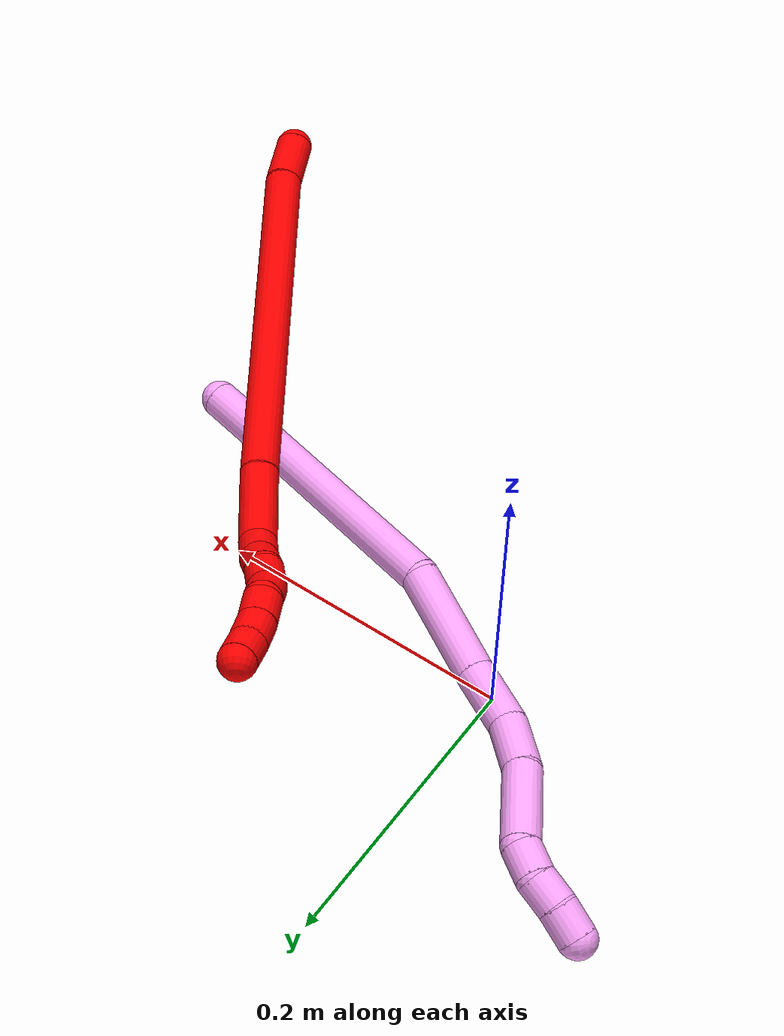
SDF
<sdf version="1.7">
 <world name="default">
  <model name="2">
   <static>0</static>
   <link name="2">
    <collision name="collision-cylinder-e_1_1_4">
     <pose>0.000374 0.00381 -0.019449 -2.94814 0.018851 -0.193676</pose>
     <geometry><cylinder><radius>0.0125</radius><length>0.039644</length></cylinder></geometry>
     <surface>
      <friction><ode><mu>1.16</mu><mu2>1.16</mu2><slip1>0</slip1><slip2>0</slip2></ode></friction>
      <contact><ode><kp>1e+06</kp><kd>1</kd><max_vel>0</max_vel><min_depth>0.001</min_depth></ode></contact>
     </surface>
    </collision>
    <visual name="visual-cylinder-e_1_1_4">
     <pose>0.000374 0.00381 -0.019449 -2.94814 0.018851 -0.193676</pose>
     <geometry><cylinder><radius>0.0125</radius><length>0.039644</length></cylinder></geometry>
     <material><ambient>1 0 0 1</ambient></material>
    </visual>
    <collision name="collision-cylinder-e_2_4_5">
     <pose>-0.003944 0.014572 -0.170513 -3.08882 -0.035578 1.18635</pose>
     <geometry><cylinder><radius>0.0125</radius><length>0.263764</length></cylinder></geometry>
     <surface>
      <friction><ode><mu>1.16</mu><mu2>1.16</mu2><slip1>0</slip1><slip2>0</slip2></ode></friction>
      <contact><ode><kp>1e+06</kp><kd>1</kd><max_vel>0</max_vel><min_depth>0.001</min_depth></ode></contact>
     </surface>
    </collision>
    <visual name="visual-cylinder-e_2_4_5">
     <pose>-0.003944 0.014572 -0.170513 -3.08882 -0.035578 1.18635</pose>
     <geometry><cylinder><radius>0.0125</radius><length>0.263764</length></cylinder></geometry>
     <material><ambient>1 0 0 1</ambient></material>
    </visual>
    <collision name="collision-cylinder-e_3_5_6">
     <pose>-0.008804 0.020269 -0.329121 3.09517 -0.006268 -0.268342</pose>
     <geometry><cylinder><radius>0.0125</radius><length>0.054046</length></cylinder></geometry>
     <surface>
      <friction><ode><mu>1.16</mu><mu2>1.16</mu2><slip1>0</slip1><slip2>0</slip2></ode></friction>
      <contact><ode><kp>1e+06</kp><kd>1</kd><max_vel>0</max_vel><min_depth>0.001</min_depth></ode></contact>
     </surface>
    </collision>
    <visual name="visual-cylinder-e_3_5_6">
     <pose>-0.008804 0.020269 -0.329121 3.09517 -0.006268 -0.268342</pose>
     <geometry><cylinder><radius>0.0125</radius><length>0.054046</length></cylinder></geometry>
     <material><ambient>1 0 0 1</ambient></material>
    </visual>
    <collision name="collision-cylinder-e_4_6_7">
     <pose>-0.013136 0.022044 -0.365566 -2.83149 -0.397108 1.82068</pose>
     <geometry><cylinder><radius>0.0125</radius><length>0.021526</length></cylinder></geometry>
     <surface>
      <friction><ode><mu>1.16</mu><mu2>1.16</mu2><slip1>0</slip1><slip2>0</slip2></ode></friction>
      <contact><ode><kp>1e+06</kp><kd>1</kd><max_vel>0</max_vel><min_depth>0.001</min_depth></ode></contact>
     </surface>
    </collision>
    <visual name="visual-cylinder-e_4_6_7">
     <pose>-0.013136 0.022044 -0.365566 -2.83149 -0.397108 1.82068</pose>
     <geometry><cylinder><radius>0.0125</radius><length>0.021526</length></cylinder></geometry>
     <material><ambient>1 0 0 1</ambient></material>
    </visual>
    <collision name="collision-cylinder-e_5_7_8">
     <pose>-0.022884 0.028282 -0.38281 -2.75081 -0.585287 1.97918</pose>
     <geometry><cylinder><radius>0.0125</radius><length>0.020219</length></cylinder></geometry>
     <surface>
      <friction><ode><mu>1.16</mu><mu2>1.16</mu2><slip1>0</slip1><slip2>0</slip2></ode></friction>
      <contact><ode><kp>1e+06</kp><kd>1</kd><max_vel>0</max_vel><min_depth>0.001</min_depth></ode></contact>
     </surface>
    </collision>
    <visual name="visual-cylinder-e_5_7_8">
     <pose>-0.022884 0.028282 -0.38281 -2.75081 -0.585287 1.97918</pose>
     <geometry><cylinder><radius>0.0125</radius><length>0.020219</length></cylinder></geometry>
     <material><ambient>1 0 0 1</ambient></material>
    </visual>
    <collision name="collision-cylinder-e_6_8_9">
     <pose>-0.032126 0.033305 -0.399921 -2.94943 -0.367724 2.18529</pose>
     <geometry><cylinder><radius>0.0125</radius><length>0.02035</length></cylinder></geometry>
     <surface>
      <friction><ode><mu>1.16</mu><mu2>1.16</mu2><slip1>0</slip1><slip2>0</slip2></ode></friction>
      <contact><ode><kp>1e+06</kp><kd>1</kd><max_vel>0</max_vel><min_depth>0.001</min_depth></ode></contact>
     </surface>
    </collision>
    <visual name="visual-cylinder-e_6_8_9">
     <pose>-0.032126 0.033305 -0.399921 -2.94943 -0.367724 2.18529</pose>
     <geometry><cylinder><radius>0.0125</radius><length>0.02035</length></cylinder></geometry>
     <material><ambient>1 0 0 1</ambient></material>
    </visual>
    <collision name="collision-cylinder-e_7_9_10">
     <pose>-0.039379 0.040178 -0.417232 -2.57715 -0.363283 1.12926</pose>
     <geometry><cylinder><radius>0.0125</radius><length>0.020236</length></cylinder></geometry>
     <surface>
      <friction><ode><mu>1.16</mu><mu2>1.16</mu2><slip1>0</slip1><slip2>0</slip2></ode></friction>
      <contact><ode><kp>1e+06</kp><kd>1</kd><max_vel>0</max_vel><min_depth>0.001</min_depth></ode></contact>
     </surface>
    </collision>
    <visual name="visual-cylinder-e_7_9_10">
     <pose>-0.039379 0.040178 -0.417232 -2.57715 -0.363283 1.12926</pose>
     <geometry><cylinder><radius>0.0125</radius><length>0.020236</length></cylinder></geometry>
     <material><ambient>1 0 0 1</ambient></material>
    </visual>
    <collision name="collision-cylinder-e_8_10_11">
     <pose>-0.043613 0.047729 -0.434968 -2.89125 -0.063378 0.493579</pose>
     <geometry><cylinder><radius>0.0125</radius><length>0.020158</length></cylinder></geometry>
     <surface>
      <friction><ode><mu>1.16</mu><mu2>1.16</mu2><slip1>0</slip1><slip2>0</slip2></ode></friction>
      <contact><ode><kp>1e+06</kp><kd>1</kd><max_vel>0</max_vel><min_depth>0.001</min_depth></ode></contact>
     </surface>
    </collision>
    <visual name="visual-cylinder-e_8_10_11">
     <pose>-0.043613 0.047729 -0.434968 -2.89125 -0.063378 0.493579</pose>
     <geometry><cylinder><radius>0.0125</radius><length>0.020158</length></cylinder></geometry>
     <material><ambient>1 0 0 1</ambient></material>
    </visual>
    <collision name="collision-cylinder-e_9_11_12">
     <pose>-0.044707 0.053989 -0.453978 -2.7554 -0.045497 0.231679</pose>
     <geometry><cylinder><radius>0.0125</radius><length>0.020025</length></cylinder></geometry>
     <surface>
      <friction><ode><mu>1.16</mu><mu2>1.16</mu2><slip1>0</slip1><slip2>0</slip2></ode></friction>
      <contact><ode><kp>1e+06</kp><kd>1</kd><max_vel>0</max_vel><min_depth>0.001</min_depth></ode></contact>
     </surface>
    </collision>
    <visual name="visual-cylinder-e_9_11_12">
     <pose>-0.044707 0.053989 -0.453978 -2.7554 -0.045497 0.231679</pose>
     <geometry><cylinder><radius>0.0125</radius><length>0.020025</length></cylinder></geometry>
     <material><ambient>1 0 0 1</ambient></material>
    </visual>
    <collision name="collision-cylinder-e_10_12_2">
     <pose>-0.04621 0.062521 -0.471992 -2.64279 -0.104752 0.405974</pose>
     <geometry><cylinder><radius>0.0125</radius><length>0.020032</length></cylinder></geometry>
     <surface>
      <friction><ode><mu>1.16</mu><mu2>1.16</mu2><slip1>0</slip1><slip2>0</slip2></ode></friction>
      <contact><ode><kp>1e+06</kp><kd>1</kd><max_vel>0</max_vel><min_depth>0.001</min_depth></ode></contact>
     </surface>
    </collision>
    <visual name="visual-cylinder-e_10_12_2">
     <pose>-0.04621 0.062521 -0.471992 -2.64279 -0.104752 0.405974</pose>
     <geometry><cylinder><radius>0.0125</radius><length>0.020032</length></cylinder></geometry>
     <material><ambient>1 0 0 1</ambient></material>
    </visual>
    <collision name="collision-sphere-2">
     <pose>-0.047257 0.067287 -0.480739 0 -0 0</pose>
     <geometry><sphere><radius>0.0125</radius></sphere></geometry>
     <surface>
      <friction><ode><mu>1.16</mu><mu2>1.16</mu2><slip1>0</slip1><slip2>0</slip2></ode></friction>
      <contact><ode><kp>1e+06</kp><kd>1</kd><max_vel>0</max_vel><min_depth>0.001</min_depth></ode></contact>
     </surface>
    </collision>
    <visual name="visual-sphere-2">
     <pose>-0.047257 0.067287 -0.480739 0 -0 0</pose>
     <geometry><sphere><radius>0.0125</radius></sphere></geometry>
     <material><ambient>1 0 0 1</ambient></material>
    </visual>
    <collision name="collision-sphere-12">
     <pose>-0.045162 0.057756 -0.463244 0 -0 0</pose>
     <geometry><sphere><radius>0.0125</radius></sphere></geometry>
     <surface>
      <friction><ode><mu>1.16</mu><mu2>1.16</mu2><slip1>0</slip1><slip2>0</slip2></ode></friction>
      <contact><ode><kp>1e+06</kp><kd>1</kd><max_vel>0</max_vel><min_depth>0.001</min_depth></ode></contact>
     </surface>
    </collision>
    <visual name="visual-sphere-12">
     <pose>-0.045162 0.057756 -0.463244 0 -0 0</pose>
     <geometry><sphere><radius>0.0125</radius></sphere></geometry>
     <material><ambient>1 0 0 1</ambient></material>
    </visual>
    <collision name="collision-sphere-11">
     <pose>-0.044252 0.050221 -0.444713 0 -0 0</pose>
     <geometry><sphere><radius>0.0125</radius></sphere></geometry>
     <surface>
      <friction><ode><mu>1.16</mu><mu2>1.16</mu2><slip1>0</slip1><slip2>0</slip2></ode></friction>
      <contact><ode><kp>1e+06</kp><kd>1</kd><max_vel>0</max_vel><min_depth>0.001</min_depth></ode></contact>
     </surface>
    </collision>
    <visual name="visual-sphere-11">
     <pose>-0.044252 0.050221 -0.444713 0 -0 0</pose>
     <geometry><sphere><radius>0.0125</radius></sphere></geometry>
     <material><ambient>1 0 0 1</ambient></material>
    </visual>
    <collision name="collision-sphere-10">
     <pose>-0.042975 0.045237 -0.425223 0 -0 0</pose>
     <geometry><sphere><radius>0.0125</radius></sphere></geometry>
     <surface>
      <friction><ode><mu>1.16</mu><mu2>1.16</mu2><slip1>0</slip1><slip2>0</slip2></ode></friction>
      <contact><ode><kp>1e+06</kp><kd>1</kd><max_vel>0</max_vel><min_depth>0.001</min_depth></ode></contact>
     </surface>
    </collision>
    <visual name="visual-sphere-10">
     <pose>-0.042975 0.045237 -0.425223 0 -0 0</pose>
     <geometry><sphere><radius>0.0125</radius></sphere></geometry>
     <material><ambient>1 0 0 1</ambient></material>
    </visual>
    <collision name="collision-sphere-9">
     <pose>-0.035784 0.035119 -0.409241 0 -0 0</pose>
     <geometry><sphere><radius>0.0125</radius></sphere></geometry>
     <surface>
      <friction><ode><mu>1.16</mu><mu2>1.16</mu2><slip1>0</slip1><slip2>0</slip2></ode></friction>
      <contact><ode><kp>1e+06</kp><kd>1</kd><max_vel>0</max_vel><min_depth>0.001</min_depth></ode></contact>
     </surface>
    </collision>
    <visual name="visual-sphere-9">
     <pose>-0.035784 0.035119 -0.409241 0 -0 0</pose>
     <geometry><sphere><radius>0.0125</radius></sphere></geometry>
     <material><ambient>1 0 0 1</ambient></material>
    </visual>
    <collision name="collision-sphere-4">
     <pose>0.000747 0.00762 -0.038898 0 -0 0</pose>
     <geometry><sphere><radius>0.0125</radius></sphere></geometry>
     <surface>
      <friction><ode><mu>1.16</mu><mu2>1.16</mu2><slip1>0</slip1><slip2>0</slip2></ode></friction>
      <contact><ode><kp>1e+06</kp><kd>1</kd><max_vel>0</max_vel><min_depth>0.001</min_depth></ode></contact>
     </surface>
    </collision>
    <visual name="visual-sphere-4">
     <pose>0.000747 0.00762 -0.038898 0 -0 0</pose>
     <geometry><sphere><radius>0.0125</radius></sphere></geometry>
     <material><ambient>1 0 0 1</ambient></material>
    </visual>
    <collision name="collision-sphere-1">
     <geometry><sphere><radius>0.0125</radius></sphere></geometry>
     <surface>
      <friction><ode><mu>1.16</mu><mu2>1.16</mu2><slip1>0</slip1><slip2>0</slip2></ode></friction>
      <contact><ode><kp>1e+06</kp><kd>1</kd><max_vel>0</max_vel><min_depth>0.001</min_depth></ode></contact>
     </surface>
    </collision>
    <visual name="visual-sphere-1">
     <geometry><sphere><radius>0.0125</radius></sphere></geometry>
     <material><ambient>1 0 0 1</ambient></material>
    </visual>
    <collision name="collision-sphere-8">
     <pose>-0.028468 0.031492 -0.390601 0 -0 0</pose>
     <geometry><sphere><radius>0.0125</radius></sphere></geometry>
     <surface>
      <friction><ode><mu>1.16</mu><mu2>1.16</mu2><slip1>0</slip1><slip2>0</slip2></ode></friction>
      <contact><ode><kp>1e+06</kp><kd>1</kd><max_vel>0</max_vel><min_depth>0.001</min_depth></ode></contact>
     </surface>
    </collision>
    <visual name="visual-sphere-8">
     <pose>-0.028468 0.031492 -0.390601 0 -0 0</pose>
     <geometry><sphere><radius>0.0125</radius></sphere></geometry>
     <material><ambient>1 0 0 1</ambient></material>
    </visual>
    <collision name="collision-sphere-5">
     <pose>-0.008635 0.021523 -0.302128 0 -0 0</pose>
     <geometry><sphere><radius>0.0125</radius></sphere></geometry>
     <surface>
      <friction><ode><mu>1.16</mu><mu2>1.16</mu2><slip1>0</slip1><slip2>0</slip2></ode></friction>
      <contact><ode><kp>1e+06</kp><kd>1</kd><max_vel>0</max_vel><min_depth>0.001</min_depth></ode></contact>
     </surface>
    </collision>
    <visual name="visual-sphere-5">
     <pose>-0.008635 0.021523 -0.302128 0 -0 0</pose>
     <geometry><sphere><radius>0.0125</radius></sphere></geometry>
     <material><ambient>1 0 0 1</ambient></material>
    </visual>
    <collision name="collision-sphere-6">
     <pose>-0.008974 0.019015 -0.356114 0 -0 0</pose>
     <geometry><sphere><radius>0.0125</radius></sphere></geometry>
     <surface>
      <friction><ode><mu>1.16</mu><mu2>1.16</mu2><slip1>0</slip1><slip2>0</slip2></ode></friction>
      <contact><ode><kp>1e+06</kp><kd>1</kd><max_vel>0</max_vel><min_depth>0.001</min_depth></ode></contact>
     </surface>
    </collision>
    <visual name="visual-sphere-6">
     <pose>-0.008974 0.019015 -0.356114 0 -0 0</pose>
     <geometry><sphere><radius>0.0125</radius></sphere></geometry>
     <material><ambient>1 0 0 1</ambient></material>
    </visual>
    <collision name="collision-sphere-7">
     <pose>-0.017299 0.025072 -0.375018 0 -0 0</pose>
     <geometry><sphere><radius>0.0125</radius></sphere></geometry>
     <surface>
      <friction><ode><mu>1.16</mu><mu2>1.16</mu2><slip1>0</slip1><slip2>0</slip2></ode></friction>
      <contact><ode><kp>1e+06</kp><kd>1</kd><max_vel>0</max_vel><min_depth>0.001</min_depth></ode></contact>
     </surface>
    </collision>
    <visual name="visual-sphere-7">
     <pose>-0.017299 0.025072 -0.375018 0 -0 0</pose>
     <geometry><sphere><radius>0.0125</radius></sphere></geometry>
     <material><ambient>1 0 0 1</ambient></material>
    </visual>
    <inertial>
     <pose>-0.012795 0.021846 -0.246077 0 -0 0</pose>
     <mass>0.5</mass>
     <inertia>
      <ixx>0.002025</ixx>
      <ixy>0</ixy>
      <ixz>0</ixz>
      <iyy>0.000836</iyy>
      <iyz>0</iyz>
      <izz>-6.5e-05</izz>
     </inertia>
    </inertial>
   </link>
   <pose>0.357165 -0.276734 0.0622 1.49144 0.731303 0.532167</pose>
  </model>
  <model name="4">
   <static>0</static>
   <link name="4">
    <collision name="collision-cylinder-e_1_1_4">
     <pose>-0.015302 -0.004717 0.021945 0.211713 -0.598356 -0.065522</pose>
     <geometry><cylinder><radius>0.0125</radius><length>0.054331</length></cylinder></geometry>
     <surface>
      <friction><ode><mu>1.16</mu><mu2>1.16</mu2><slip1>0</slip1><slip2>0</slip2></ode></friction>
      <contact><ode><kp>1e+06</kp><kd>1</kd><max_vel>0</max_vel><min_depth>0.001</min_depth></ode></contact>
     </surface>
    </collision>
    <visual name="visual-cylinder-e_1_1_4">
     <pose>-0.015302 -0.004717 0.021945 0.211713 -0.598356 -0.065522</pose>
     <geometry><cylinder><radius>0.0125</radius><length>0.054331</length></cylinder></geometry>
     <material><ambient>1 0.65098 0.996078 1</ambient></material>
    </visual>
    <collision name="collision-cylinder-e_2_4_5">
     <pose>-0.07441 -0.008728 0.114559 -0.009982 -0.554884 0.002843</pose>
     <geometry><cylinder><radius>0.0125</radius><length>0.166297</length></cylinder></geometry>
     <surface>
      <friction><ode><mu>1.16</mu><mu2>1.16</mu2><slip1>0</slip1><slip2>0</slip2></ode></friction>
      <contact><ode><kp>1e+06</kp><kd>1</kd><max_vel>0</max_vel><min_depth>0.001</min_depth></ode></contact>
     </surface>
    </collision>
    <visual name="visual-cylinder-e_2_4_5">
     <pose>-0.07441 -0.008728 0.114559 -0.009982 -0.554884 0.002843</pose>
     <geometry><cylinder><radius>0.0125</radius><length>0.166297</length></cylinder></geometry>
     <material><ambient>1 0.65098 0.996078 1</ambient></material>
    </visual>
    <collision name="collision-cylinder-e_3_5_6">
     <pose>-0.14788 -0.010372 0.209128 0.097991 -0.890249 -0.046776</pose>
     <geometry><cylinder><radius>0.0125</radius><length>0.076333</length></cylinder></geometry>
     <surface>
      <friction><ode><mu>1.16</mu><mu2>1.16</mu2><slip1>0</slip1><slip2>0</slip2></ode></friction>
      <contact><ode><kp>1e+06</kp><kd>1</kd><max_vel>0</max_vel><min_depth>0.001</min_depth></ode></contact>
     </surface>
    </collision>
    <visual name="visual-cylinder-e_3_5_6">
     <pose>-0.14788 -0.010372 0.209128 0.097991 -0.890249 -0.046776</pose>
     <geometry><cylinder><radius>0.0125</radius><length>0.076333</length></cylinder></geometry>
     <material><ambient>1 0.65098 0.996078 1</ambient></material>
    </visual>
    <collision name="collision-cylinder-e_4_6_7">
     <pose>-0.192915 -0.013117 0.247496 0.027365 -0.815415 -0.01182</pose>
     <geometry><cylinder><radius>0.0125</radius><length>0.042225</length></cylinder></geometry>
     <surface>
      <friction><ode><mu>1.16</mu><mu2>1.16</mu2><slip1>0</slip1><slip2>0</slip2></ode></friction>
      <contact><ode><kp>1e+06</kp><kd>1</kd><max_vel>0</max_vel><min_depth>0.001</min_depth></ode></contact>
     </surface>
    </collision>
    <visual name="visual-cylinder-e_4_6_7">
     <pose>-0.192915 -0.013117 0.247496 0.027365 -0.815415 -0.01182</pose>
     <geometry><cylinder><radius>0.0125</radius><length>0.042225</length></cylinder></geometry>
     <material><ambient>1 0.65098 0.996078 1</ambient></material>
    </visual>
    <collision name="collision-cylinder-e_5_7_8">
     <pose>-0.221882 -0.006677 0.274125 -0.512188 -0.772592 0.2122</pose>
     <geometry><cylinder><radius>0.0125</radius><length>0.03896</length></cylinder></geometry>
     <surface>
      <friction><ode><mu>1.16</mu><mu2>1.16</mu2><slip1>0</slip1><slip2>0</slip2></ode></friction>
      <contact><ode><kp>1e+06</kp><kd>1</kd><max_vel>0</max_vel><min_depth>0.001</min_depth></ode></contact>
     </surface>
    </collision>
    <visual name="visual-cylinder-e_5_7_8">
     <pose>-0.221882 -0.006677 0.274125 -0.512188 -0.772592 0.2122</pose>
     <geometry><cylinder><radius>0.0125</radius><length>0.03896</length></cylinder></geometry>
     <material><ambient>1 0.65098 0.996078 1</ambient></material>
    </visual>
    <collision name="collision-cylinder-e_6_8_9">
     <pose>-0.257798 0.014025 0.298673 -0.841583 -0.876218 0.413317</pose>
     <geometry><cylinder><radius>0.0125</radius><length>0.0581</length></cylinder></geometry>
     <surface>
      <friction><ode><mu>1.16</mu><mu2>1.16</mu2><slip1>0</slip1><slip2>0</slip2></ode></friction>
      <contact><ode><kp>1e+06</kp><kd>1</kd><max_vel>0</max_vel><min_depth>0.001</min_depth></ode></contact>
     </surface>
    </collision>
    <visual name="visual-cylinder-e_6_8_9">
     <pose>-0.257798 0.014025 0.298673 -0.841583 -0.876218 0.413317</pose>
     <geometry><cylinder><radius>0.0125</radius><length>0.0581</length></cylinder></geometry>
     <material><ambient>1 0.65098 0.996078 1</ambient></material>
    </visual>
    <collision name="collision-cylinder-e_7_9_10">
     <pose>-0.288771 0.027779 0.317272 0.017939 -0.948164 -0.009205</pose>
     <geometry><cylinder><radius>0.0125</radius><length>0.021303</length></cylinder></geometry>
     <surface>
      <friction><ode><mu>1.16</mu><mu2>1.16</mu2><slip1>0</slip1><slip2>0</slip2></ode></friction>
      <contact><ode><kp>1e+06</kp><kd>1</kd><max_vel>0</max_vel><min_depth>0.001</min_depth></ode></contact>
     </surface>
    </collision>
    <visual name="visual-cylinder-e_7_9_10">
     <pose>-0.288771 0.027779 0.317272 0.017939 -0.948164 -0.009205</pose>
     <geometry><cylinder><radius>0.0125</radius><length>0.021303</length></cylinder></geometry>
     <material><ambient>1 0.65098 0.996078 1</ambient></material>
    </visual>
    <collision name="collision-cylinder-e_8_10_11">
     <pose>-0.305006 0.024371 0.329805 0.480628 -0.816166 -0.211109</pose>
     <geometry><cylinder><radius>0.0125</radius><length>0.020815</length></cylinder></geometry>
     <surface>
      <friction><ode><mu>1.16</mu><mu2>1.16</mu2><slip1>0</slip1><slip2>0</slip2></ode></friction>
      <contact><ode><kp>1e+06</kp><kd>1</kd><max_vel>0</max_vel><min_depth>0.001</min_depth></ode></contact>
     </surface>
    </collision>
    <visual name="visual-cylinder-e_8_10_11">
     <pose>-0.305006 0.024371 0.329805 0.480628 -0.816166 -0.211109</pose>
     <geometry><cylinder><radius>0.0125</radius><length>0.020815</length></cylinder></geometry>
     <material><ambient>1 0.65098 0.996078 1</ambient></material>
    </visual>
    <collision name="collision-cylinder-e_9_11_2">
     <pose>-0.32122 0.017122 0.341312 0.651313 -0.923894 -0.333129</pose>
     <geometry><cylinder><radius>0.0125</radius><length>0.021636</length></cylinder></geometry>
     <surface>
      <friction><ode><mu>1.16</mu><mu2>1.16</mu2><slip1>0</slip1><slip2>0</slip2></ode></friction>
      <contact><ode><kp>1e+06</kp><kd>1</kd><max_vel>0</max_vel><min_depth>0.001</min_depth></ode></contact>
     </surface>
    </collision>
    <visual name="visual-cylinder-e_9_11_2">
     <pose>-0.32122 0.017122 0.341312 0.651313 -0.923894 -0.333129</pose>
     <geometry><cylinder><radius>0.0125</radius><length>0.021636</length></cylinder></geometry>
     <material><ambient>1 0.65098 0.996078 1</ambient></material>
    </visual>
    <collision name="collision-sphere-2">
     <pose>-0.329853 0.013169 0.346497 0 -0 0</pose>
     <geometry><sphere><radius>0.0125</radius></sphere></geometry>
     <surface>
      <friction><ode><mu>1.16</mu><mu2>1.16</mu2><slip1>0</slip1><slip2>0</slip2></ode></friction>
      <contact><ode><kp>1e+06</kp><kd>1</kd><max_vel>0</max_vel><min_depth>0.001</min_depth></ode></contact>
     </surface>
    </collision>
    <visual name="visual-sphere-2">
     <pose>-0.329853 0.013169 0.346497 0 -0 0</pose>
     <geometry><sphere><radius>0.0125</radius></sphere></geometry>
     <material><ambient>1 0.65098 0.996078 1</ambient></material>
    </visual>
    <collision name="collision-sphere-11">
     <pose>-0.312588 0.021075 0.336126 0 -0 0</pose>
     <geometry><sphere><radius>0.0125</radius></sphere></geometry>
     <surface>
      <friction><ode><mu>1.16</mu><mu2>1.16</mu2><slip1>0</slip1><slip2>0</slip2></ode></friction>
      <contact><ode><kp>1e+06</kp><kd>1</kd><max_vel>0</max_vel><min_depth>0.001</min_depth></ode></contact>
     </surface>
    </collision>
    <visual name="visual-sphere-11">
     <pose>-0.312588 0.021075 0.336126 0 -0 0</pose>
     <geometry><sphere><radius>0.0125</radius></sphere></geometry>
     <material><ambient>1 0.65098 0.996078 1</ambient></material>
    </visual>
    <collision name="collision-sphere-10">
     <pose>-0.297423 0.027667 0.323483 0 -0 0</pose>
     <geometry><sphere><radius>0.0125</radius></sphere></geometry>
     <surface>
      <friction><ode><mu>1.16</mu><mu2>1.16</mu2><slip1>0</slip1><slip2>0</slip2></ode></friction>
      <contact><ode><kp>1e+06</kp><kd>1</kd><max_vel>0</max_vel><min_depth>0.001</min_depth></ode></contact>
     </surface>
    </collision>
    <visual name="visual-sphere-10">
     <pose>-0.297423 0.027667 0.323483 0 -0 0</pose>
     <geometry><sphere><radius>0.0125</radius></sphere></geometry>
     <material><ambient>1 0.65098 0.996078 1</ambient></material>
    </visual>
    <collision name="collision-sphere-9">
     <pose>-0.280118 0.02789 0.311062 0 -0 0</pose>
     <geometry><sphere><radius>0.0125</radius></sphere></geometry>
     <surface>
      <friction><ode><mu>1.16</mu><mu2>1.16</mu2><slip1>0</slip1><slip2>0</slip2></ode></friction>
      <contact><ode><kp>1e+06</kp><kd>1</kd><max_vel>0</max_vel><min_depth>0.001</min_depth></ode></contact>
     </surface>
    </collision>
    <visual name="visual-sphere-9">
     <pose>-0.280118 0.02789 0.311062 0 -0 0</pose>
     <geometry><sphere><radius>0.0125</radius></sphere></geometry>
     <material><ambient>1 0.65098 0.996078 1</ambient></material>
    </visual>
    <collision name="collision-sphere-4">
     <pose>-0.030604 -0.009433 0.043889 0 -0 0</pose>
     <geometry><sphere><radius>0.0125</radius></sphere></geometry>
     <surface>
      <friction><ode><mu>1.16</mu><mu2>1.16</mu2><slip1>0</slip1><slip2>0</slip2></ode></friction>
      <contact><ode><kp>1e+06</kp><kd>1</kd><max_vel>0</max_vel><min_depth>0.001</min_depth></ode></contact>
     </surface>
    </collision>
    <visual name="visual-sphere-4">
     <pose>-0.030604 -0.009433 0.043889 0 -0 0</pose>
     <geometry><sphere><radius>0.0125</radius></sphere></geometry>
     <material><ambient>1 0.65098 0.996078 1</ambient></material>
    </visual>
    <collision name="collision-sphere-1">
     <geometry><sphere><radius>0.0125</radius></sphere></geometry>
     <surface>
      <friction><ode><mu>1.16</mu><mu2>1.16</mu2><slip1>0</slip1><slip2>0</slip2></ode></friction>
      <contact><ode><kp>1e+06</kp><kd>1</kd><max_vel>0</max_vel><min_depth>0.001</min_depth></ode></contact>
     </surface>
    </collision>
    <visual name="visual-sphere-1">
     <geometry><sphere><radius>0.0125</radius></sphere></geometry>
     <material><ambient>1 0.65098 0.996078 1</ambient></material>
    </visual>
    <collision name="collision-sphere-8">
     <pose>-0.235479 0.00016 0.286284 0 -0 0</pose>
     <geometry><sphere><radius>0.0125</radius></sphere></geometry>
     <surface>
      <friction><ode><mu>1.16</mu><mu2>1.16</mu2><slip1>0</slip1><slip2>0</slip2></ode></friction>
      <contact><ode><kp>1e+06</kp><kd>1</kd><max_vel>0</max_vel><min_depth>0.001</min_depth></ode></contact>
     </surface>
    </collision>
    <visual name="visual-sphere-8">
     <pose>-0.235479 0.00016 0.286284 0 -0 0</pose>
     <geometry><sphere><radius>0.0125</radius></sphere></geometry>
     <material><ambient>1 0.65098 0.996078 1</ambient></material>
    </visual>
    <collision name="collision-sphere-5">
     <pose>-0.118216 -0.008022 0.185228 0 -0 0</pose>
     <geometry><sphere><radius>0.0125</radius></sphere></geometry>
     <surface>
      <friction><ode><mu>1.16</mu><mu2>1.16</mu2><slip1>0</slip1><slip2>0</slip2></ode></friction>
      <contact><ode><kp>1e+06</kp><kd>1</kd><max_vel>0</max_vel><min_depth>0.001</min_depth></ode></contact>
     </surface>
    </collision>
    <visual name="visual-sphere-5">
     <pose>-0.118216 -0.008022 0.185228 0 -0 0</pose>
     <geometry><sphere><radius>0.0125</radius></sphere></geometry>
     <material><ambient>1 0.65098 0.996078 1</ambient></material>
    </visual>
    <collision name="collision-sphere-6">
     <pose>-0.177545 -0.012721 0.233028 0 -0 0</pose>
     <geometry><sphere><radius>0.0125</radius></sphere></geometry>
     <surface>
      <friction><ode><mu>1.16</mu><mu2>1.16</mu2><slip1>0</slip1><slip2>0</slip2></ode></friction>
      <contact><ode><kp>1e+06</kp><kd>1</kd><max_vel>0</max_vel><min_depth>0.001</min_depth></ode></contact>
     </surface>
    </collision>
    <visual name="visual-sphere-6">
     <pose>-0.177545 -0.012721 0.233028 0 -0 0</pose>
     <geometry><sphere><radius>0.0125</radius></sphere></geometry>
     <material><ambient>1 0.65098 0.996078 1</ambient></material>
    </visual>
    <collision name="collision-sphere-7">
     <pose>-0.208285 -0.013513 0.261965 0 -0 0</pose>
     <geometry><sphere><radius>0.0125</radius></sphere></geometry>
     <surface>
      <friction><ode><mu>1.16</mu><mu2>1.16</mu2><slip1>0</slip1><slip2>0</slip2></ode></friction>
      <contact><ode><kp>1e+06</kp><kd>1</kd><max_vel>0</max_vel><min_depth>0.001</min_depth></ode></contact>
     </surface>
    </collision>
    <visual name="visual-sphere-7">
     <pose>-0.208285 -0.013513 0.261965 0 -0 0</pose>
     <geometry><sphere><radius>0.0125</radius></sphere></geometry>
     <material><ambient>1 0.65098 0.996078 1</ambient></material>
    </visual>
    <inertial>
     <pose>-0.151425 -0.002058 0.191396 0 -0 0</pose>
     <mass>0.5</mass>
     <inertia>
      <ixx>0.000371</ixx>
      <ixy>0</ixy>
      <ixz>0</ixz>
      <iyy>0.000484</iyy>
      <iyz>0</iyz>
      <izz>0.000293</izz>
     </inertia>
    </inertial>
   </link>
   <pose>0.283792 -0.090218 0.01175 0.904516 -0.550799 -1.05914</pose>
  </model>
 </world>
</sdf>
